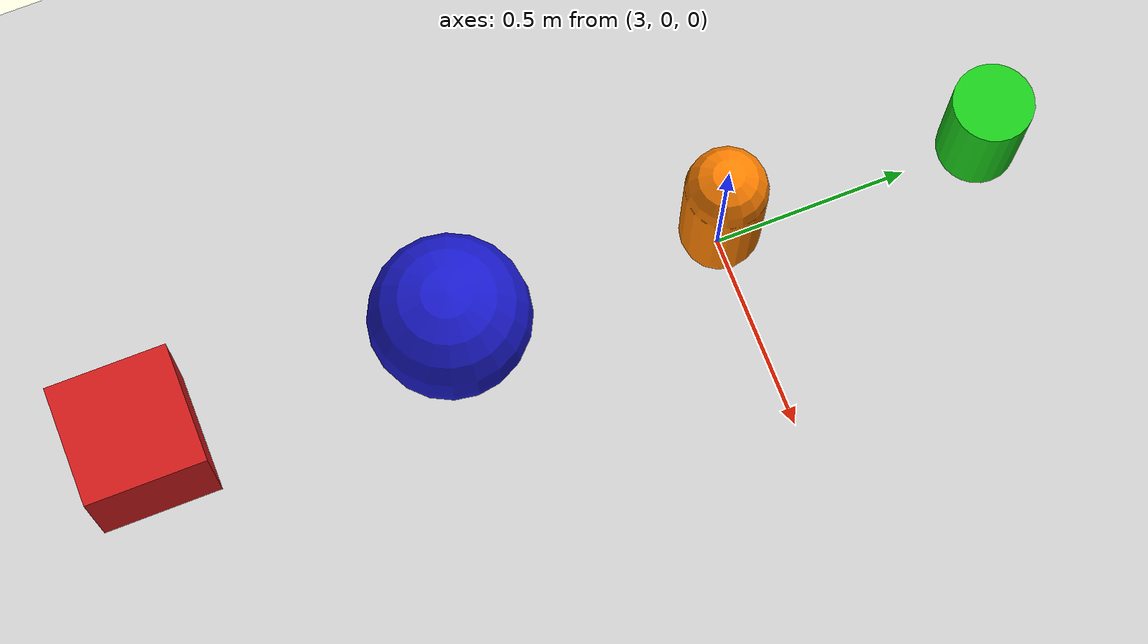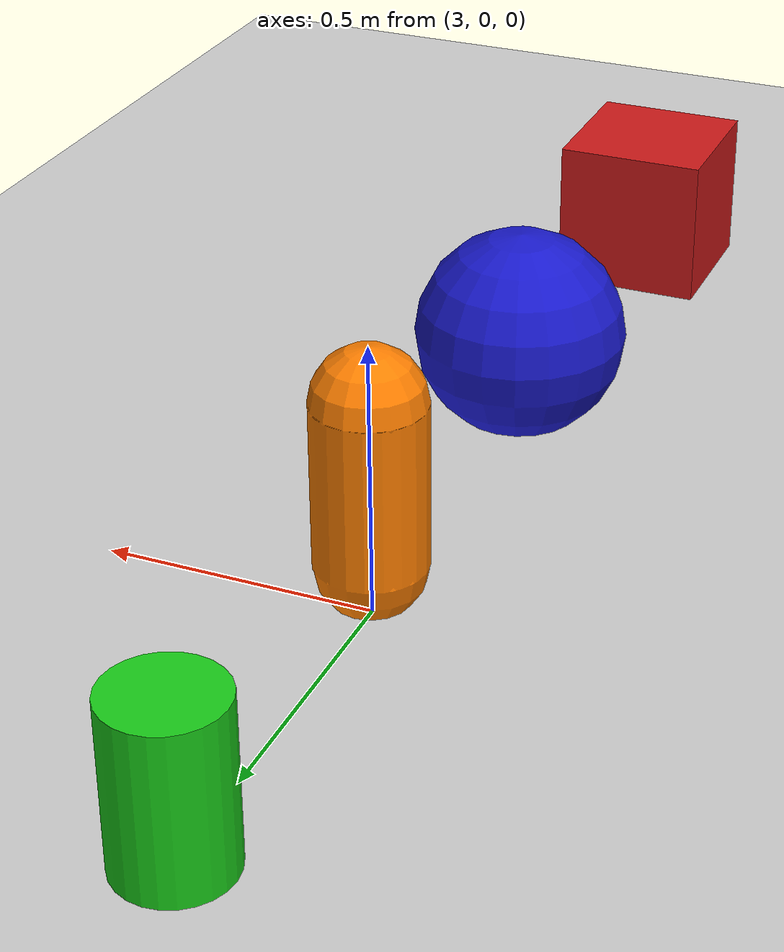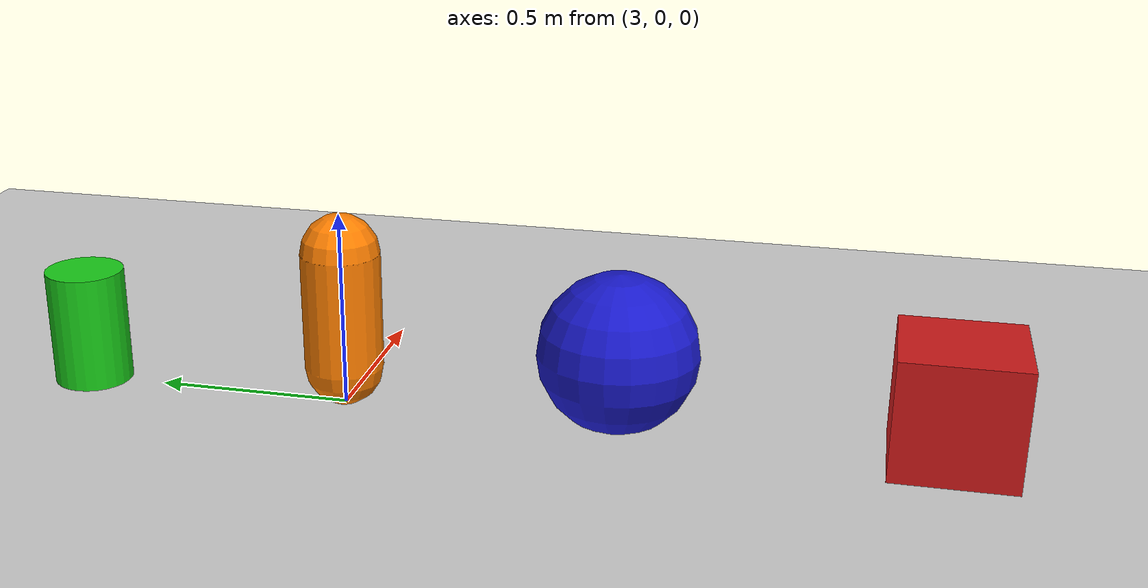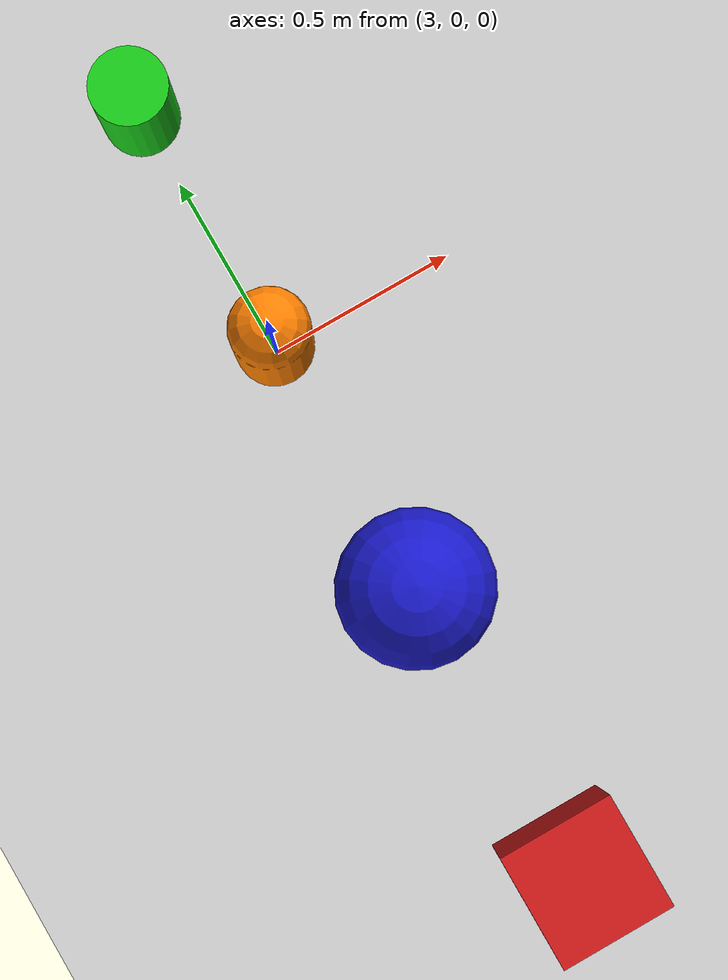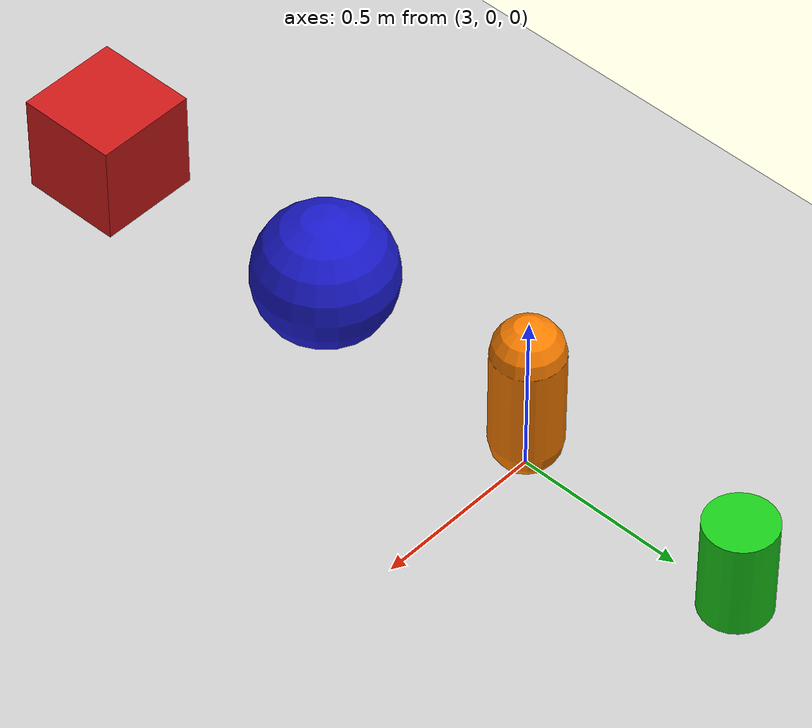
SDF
<?xml version="1.0" ?>
<sdf version="1.8">
  <world name="interview_world">

    <physics name="1ms" type="ignored">
      <max_step_size>0.001</max_step_size>
      <real_time_factor>1.0</real_time_factor>
    </physics>

    <plugin filename="libignition-gazebo-physics-system.so"
            name="ignition::gazebo::systems::Physics"/>
    <plugin filename="libignition-gazebo-user-commands-system.so"
            name="ignition::gazebo::systems::UserCommands"/>
    <plugin filename="libignition-gazebo-scene-broadcaster-system.so"
            name="ignition::gazebo::systems::SceneBroadcaster"/>
    <plugin filename="libignition-gazebo-sensors-system.so"
            name="ignition::gazebo::systems::Sensors">
      <render_engine>ogre2</render_engine>
    </plugin>
    <plugin filename="libignition-gazebo-imu-system.so"
            name="ignition::gazebo::systems::Imu"/>

    <light type="directional" name="sun">
      <cast_shadows>true</cast_shadows>
      <pose>0 0 10 0 0 0</pose>
      <diffuse>0.8 0.8 0.8 1</diffuse>
      <specular>0.2 0.2 0.2 1</specular>
      <direction>-0.5 0.1 -0.9</direction>
    </light>

    <model name="ground_plane">
      <static>true</static>
      <link name="link">
        <collision name="collision">
          <geometry><plane><normal>0 0 1</normal><size>100 100</size></plane></geometry>
        </collision>
        <visual name="visual">
          <geometry><plane><normal>0 0 1</normal><size>100 100</size></plane></geometry>
          <material>
            <ambient>0.8 0.8 0.8 1</ambient>
            <diffuse>0.8 0.8 0.8 1</diffuse>
          </material>
        </visual>
      </link>
    </model>

    <!-- TARGET: RED BOX -->
    <model name="target_box">
      <pose>3.0 -1.5 0.15 0 0 0</pose>
      <link name="link">
        <collision name="col">
          <geometry><box><size>0.3 0.3 0.3</size></box></geometry>
        </collision>
        <visual name="vis">
          <geometry><box><size>0.3 0.3 0.3</size></box></geometry>
          <material><ambient>0.8 0.1 0.1 1</ambient><diffuse>0.8 0.1 0.1 1</diffuse></material>
        </visual>
      </link>
    </model>

    <!-- DECOY: BLUE SPHERE -->
    <model name="decoy_sphere">
      <pose>3.0 -0.7 0.2 0 0 0</pose>
      <link name="link">
        <collision name="col">
          <geometry><sphere><radius>0.2</radius></sphere></geometry>
        </collision>
        <visual name="vis">
          <geometry><sphere><radius>0.2</radius></sphere></geometry>
          <material><ambient>0.1 0.1 0.8 1</ambient><diffuse>0.1 0.1 0.8 1</diffuse></material>
        </visual>
      </link>
    </model>

    <!-- DECOY: ORANGE CAPSULE -->
    <model name="decoy_capsule">
      <pose>3.0 0.0 0.25 0 0 0</pose>
      <link name="link">
        <collision name="col">
          <geometry><capsule><radius>0.1</radius><length>0.30</length></capsule></geometry>
        </collision>
        <visual name="vis">
          <geometry><capsule><radius>0.1</radius><length>0.30</length></capsule></geometry>
          <material><ambient>1.0 0.5 0.0 1</ambient><diffuse>1.0 0.5 0.0 1</diffuse></material>
        </visual>
      </link>
    </model>

    <!-- DECOY: GREEN CYLINDER -->
    <model name="decoy_cylinder">
      <pose>3.0 0.7 0.15 0 0 0</pose>
      <link name="link">
        <collision name="col">
          <geometry><cylinder><radius>0.1</radius><length>0.30</length></cylinder></geometry>
        </collision>
        <visual name="vis">
          <geometry><cylinder><radius>0.1</radius><length>0.30</length></cylinder></geometry>
          <material><ambient>0.1 0.8 0.1 1</ambient><diffuse>0.1 0.8 0.1 1</diffuse></material>
        </visual>
      </link>
    </model>

  </world>
</sdf>
